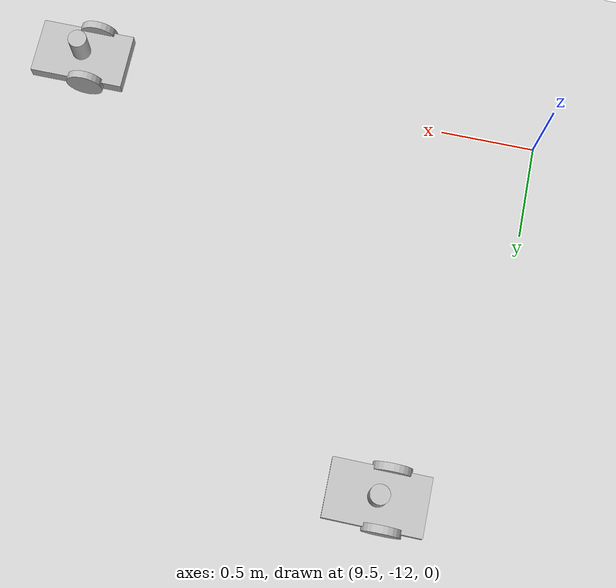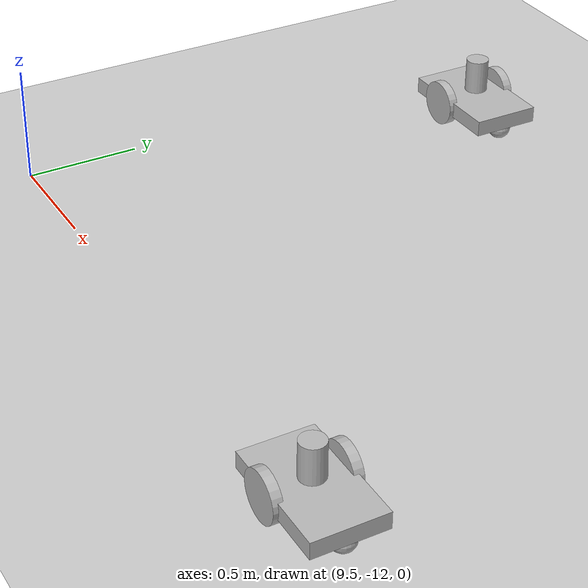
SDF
<sdf version="1.6">
 <world name="default">
  <model name="ground_plane">
   <static>1</static>
   <link name="link">
    <collision name="collision">
     <geometry><plane><normal>0 0 1</normal><size>100 100</size></plane></geometry>
     <surface>
      <contact><collide_bitmask>65535</collide_bitmask></contact>
      <friction><ode><mu>100</mu><mu2>50</mu2></ode></friction>
     </surface>
    </collision>
    <visual name="visual">
     <cast_shadows>0</cast_shadows>
     <geometry><plane><normal>0 0 1</normal><size>100 100</size></plane></geometry>
     <material>
      <script><uri>file://media/materials/scripts/gazebo.material</uri><name>Gazebo/Grey</name></script>
     </material>
    </visual>
   </link>
  </model>
  <model name="robot_8">
   <link name="robot/link_chassis">
    <inertial>
     <pose>0 0 0.021667 0 -0 0</pose>
     <mass>6</mass>
     <inertia>
      <ixx>0.0931667</ixx>
      <ixy>0</ixy>
      <ixz>0</ixz>
      <iyy>0.2265</iyy>
      <iyz>0</iyz>
      <izz>0.212417</izz>
     </inertia>
    </inertial>
    <collision name="robot/link_chassis_fixed_joint_lump__robot/collision_chassis_collision">
     <geometry><box><size>0.5 0.3 0.07</size></box></geometry>
    </collision>
    <collision name="robot/link_chassis_fixed_joint_lump__robot/caster_front_collision_collision_1">
     <pose>0.35 0 -0.05 0 -0 0</pose>
     <geometry><sphere><radius>0.05</radius></sphere></geometry>
    </collision>
    <collision name="robot/link_chassis_fixed_joint_lump__robot/sensor_laser_collision_2">
     <pose>0 0 0.13 0 -0 0</pose>
     <geometry><cylinder><length>0.15</length><radius>0.05</radius></cylinder></geometry>
    </collision>
    <visual name="robot/link_chassis_visual"><geometry><box><size>0.5 0.3 0.07</size></box></geometry></visual>
    <visual name="robot/link_chassis_fixed_joint_lump__robot/caster_front_visual_visual_1">
     <pose>0.2 0 -0.05 0 -0 0</pose>
     <geometry><sphere><radius>0.05</radius></sphere></geometry>
    </visual>
    <visual name="robot/link_chassis_fixed_joint_lump__robot/sensor_laser_visual_2">
     <pose>0 0 0.13 0 -0 0</pose>
     <geometry><cylinder><length>0.15</length><radius>0.05</radius></cylinder></geometry>
     <material><script><uri>__default__</uri><name>__default__</name></script></material>
    </visual>
    <sensor name="head_hokuyo_sensor" type="ray">
     <visualize>0</visualize>
     <update_rate>20</update_rate>
     <ray>
      <scan>
       <horizontal>
        <samples>720</samples>
        <resolution>1</resolution>
        <min_angle>-1.5707</min_angle>
        <max_angle>1.5707</max_angle>
       </horizontal>
       <vertical><samples>1</samples><min_angle>0</min_angle><max_angle>0</max_angle></vertical>
      </scan>
      <range><min>0.2</min><max>2</max><resolution>0.01</resolution></range>
      <noise><type>gaussian</type><mean>0</mean><stddev>0.01</stddev></noise>
     </ray>
     <plugin name="gazebo_ros_head_hokuyo_controller" filename="libgazebo_ros_laser.so">
      <topicName>laser_scan</topicName>
      <frameName>sensor_laser</frameName>
      <robotNamespace>/robot_8/</robotNamespace>
     </plugin>
     <pose>0 0 0.13 0 -0 0</pose>
    </sensor>
   </link>
   <link name="robot/link_left_wheel">
    <pose>-0.05 -0.15 0 0 -0 0</pose>
    <inertial>
     <pose>0 0 0 -0 1.5707 1.5707</pose>
     <mass>0.2</mass>
     <inertia>
      <ixx>0.000526667</ixx>
      <ixy>0</ixy>
      <ixz>0</ixz>
      <iyy>0.000526667</iyy>
      <iyz>0</iyz>
      <izz>0.001</izz>
     </inertia>
    </inertial>
    <collision name="robot/link_left_wheel_collision_collision">
     <pose>0 0 0 3.14159 1.57079 -1.57089</pose>
     <geometry><cylinder><length>0.04</length><radius>0.1</radius></cylinder></geometry>
    </collision>
    <visual name="robot/link_left_wheel_visual_visual">
     <pose>0 0 0 3.14159 1.57079 -1.57089</pose>
     <geometry><cylinder><length>0.04</length><radius>0.1</radius></cylinder></geometry>
    </visual>
   </link>
   <joint name="robot/joint_left_wheel" type="revolute">
    <child>robot/link_left_wheel</child>
    <parent>robot/link_chassis</parent>
    <axis>
     <xyz>0 1 0</xyz>
     <limit><lower>-1e+16</lower><upper>1e+16</upper></limit>
     <dynamics><spring_reference>0</spring_reference><spring_stiffness>0</spring_stiffness></dynamics>
     <use_parent_model_frame>1</use_parent_model_frame>
    </axis>
   </joint>
   <link name="robot/link_right_wheel">
    <pose>-0.05 0.15 0 0 -0 0</pose>
    <inertial>
     <pose>0 0 0 -0 1.5707 1.5707</pose>
     <mass>0.2</mass>
     <inertia>
      <ixx>0.000526667</ixx>
      <ixy>0</ixy>
      <ixz>0</ixz>
      <iyy>0.000526667</iyy>
      <iyz>0</iyz>
      <izz>0.001</izz>
     </inertia>
    </inertial>
    <collision name="robot/link_right_wheel_collision_collision">
     <pose>0 0 0 3.14159 1.57079 -1.57089</pose>
     <geometry><cylinder><length>0.04</length><radius>0.1</radius></cylinder></geometry>
    </collision>
    <visual name="robot/link_right_wheel_visual_visual">
     <pose>0 0 0 3.14159 1.57079 -1.57089</pose>
     <geometry><cylinder><length>0.04</length><radius>0.1</radius></cylinder></geometry>
    </visual>
   </link>
   <joint name="robot/joint_right_wheel" type="revolute">
    <child>robot/link_right_wheel</child>
    <parent>robot/link_chassis</parent>
    <axis>
     <xyz>0 1 0</xyz>
     <limit><lower>-1e+16</lower><upper>1e+16</upper></limit>
     <dynamics><spring_reference>0</spring_reference><spring_stiffness>0</spring_stiffness></dynamics>
     <use_parent_model_frame>1</use_parent_model_frame>
    </axis>
   </joint>
   <plugin name="gazebo_ros_control" filename="libgazebo_ros_control.so">
    <robotSimType>gazebo_ros_control/DefaultRobotHWSim</robotSimType>
    <legacyModeNS>1</legacyModeNS>
    <robotNamespace>/robot_8/</robotNamespace>
   </plugin>
   <static>0</static>
   <plugin name="differential_drive_controller" filename="libgazebo_ros_diff_drive.so">
    <legacyMode>0</legacyMode>
    <alwaysOn>1</alwaysOn>
    <updateRate>20</updateRate>
    <leftJoint>robot/joint_left_wheel</leftJoint>
    <rightJoint>robot/joint_right_wheel</rightJoint>
    <wheelSeparation>0.2</wheelSeparation>
    <wheelDiameter>0.2</wheelDiameter>
    <torque>0.1</torque>
    <commandTopic>cmd_vel</commandTopic>
    <odometryTopic>odom</odometryTopic>
    <odometryFrame>odom</odometryFrame>
    <robotBaseFrame>link_chassis</robotBaseFrame>
    <robotNamespace>/robot_8/</robotNamespace>
   </plugin>
   <pose>11.9947 -11.9977 0.1 0 1e-06 -0.002934</pose>
  </model>
  <model name="robot_7">
   <link name="robot/link_chassis">
    <inertial>
     <pose>0 0 0.021667 0 -0 0</pose>
     <mass>6</mass>
     <inertia>
      <ixx>0.0931667</ixx>
      <ixy>0</ixy>
      <ixz>0</ixz>
      <iyy>0.2265</iyy>
      <iyz>0</iyz>
      <izz>0.212417</izz>
     </inertia>
    </inertial>
    <collision name="robot/link_chassis_fixed_joint_lump__robot/collision_chassis_collision">
     <geometry><box><size>0.5 0.3 0.07</size></box></geometry>
    </collision>
    <collision name="robot/link_chassis_fixed_joint_lump__robot/caster_front_collision_collision_1">
     <pose>0.35 0 -0.05 0 -0 0</pose>
     <geometry><sphere><radius>0.05</radius></sphere></geometry>
    </collision>
    <collision name="robot/link_chassis_fixed_joint_lump__robot/sensor_laser_collision_2">
     <pose>0 0 0.13 0 -0 0</pose>
     <geometry><cylinder><length>0.15</length><radius>0.05</radius></cylinder></geometry>
    </collision>
    <visual name="robot/link_chassis_visual"><geometry><box><size>0.5 0.3 0.07</size></box></geometry></visual>
    <visual name="robot/link_chassis_fixed_joint_lump__robot/caster_front_visual_visual_1">
     <pose>0.2 0 -0.05 0 -0 0</pose>
     <geometry><sphere><radius>0.05</radius></sphere></geometry>
    </visual>
    <visual name="robot/link_chassis_fixed_joint_lump__robot/sensor_laser_visual_2">
     <pose>0 0 0.13 0 -0 0</pose>
     <geometry><cylinder><length>0.15</length><radius>0.05</radius></cylinder></geometry>
     <material><script><uri>__default__</uri><name>__default__</name></script></material>
    </visual>
    <sensor name="head_hokuyo_sensor" type="ray">
     <visualize>0</visualize>
     <update_rate>20</update_rate>
     <ray>
      <scan>
       <horizontal>
        <samples>720</samples>
        <resolution>1</resolution>
        <min_angle>-1.5707</min_angle>
        <max_angle>1.5707</max_angle>
       </horizontal>
       <vertical><samples>1</samples><min_angle>0</min_angle><max_angle>0</max_angle></vertical>
      </scan>
      <range><min>0.2</min><max>2</max><resolution>0.01</resolution></range>
      <noise><type>gaussian</type><mean>0</mean><stddev>0.01</stddev></noise>
     </ray>
     <plugin name="gazebo_ros_head_hokuyo_controller" filename="libgazebo_ros_laser.so">
      <topicName>laser_scan</topicName>
      <frameName>sensor_laser</frameName>
      <robotNamespace>/robot_7/</robotNamespace>
     </plugin>
     <pose>0 0 0.13 0 -0 0</pose>
    </sensor>
   </link>
   <link name="robot/link_left_wheel">
    <pose>-0.05 -0.15 0 0 -0 0</pose>
    <inertial>
     <pose>0 0 0 -0 1.5707 1.5707</pose>
     <mass>0.2</mass>
     <inertia>
      <ixx>0.000526667</ixx>
      <ixy>0</ixy>
      <ixz>0</ixz>
      <iyy>0.000526667</iyy>
      <iyz>0</iyz>
      <izz>0.001</izz>
     </inertia>
    </inertial>
    <collision name="robot/link_left_wheel_collision_collision">
     <pose>0 0 0 3.14159 1.57079 -1.57089</pose>
     <geometry><cylinder><length>0.04</length><radius>0.1</radius></cylinder></geometry>
    </collision>
    <visual name="robot/link_left_wheel_visual_visual">
     <pose>0 0 0 3.14159 1.57079 -1.57089</pose>
     <geometry><cylinder><length>0.04</length><radius>0.1</radius></cylinder></geometry>
    </visual>
   </link>
   <joint name="robot/joint_left_wheel" type="revolute">
    <child>robot/link_left_wheel</child>
    <parent>robot/link_chassis</parent>
    <axis>
     <xyz>0 1 0</xyz>
     <limit><lower>-1e+16</lower><upper>1e+16</upper></limit>
     <dynamics><spring_reference>0</spring_reference><spring_stiffness>0</spring_stiffness></dynamics>
     <use_parent_model_frame>1</use_parent_model_frame>
    </axis>
   </joint>
   <link name="robot/link_right_wheel">
    <pose>-0.05 0.15 0 0 -0 0</pose>
    <inertial>
     <pose>0 0 0 -0 1.5707 1.5707</pose>
     <mass>0.2</mass>
     <inertia>
      <ixx>0.000526667</ixx>
      <ixy>0</ixy>
      <ixz>0</ixz>
      <iyy>0.000526667</iyy>
      <iyz>0</iyz>
      <izz>0.001</izz>
     </inertia>
    </inertial>
    <collision name="robot/link_right_wheel_collision_collision">
     <pose>0 0 0 3.14159 1.57079 -1.57089</pose>
     <geometry><cylinder><length>0.04</length><radius>0.1</radius></cylinder></geometry>
    </collision>
    <visual name="robot/link_right_wheel_visual_visual">
     <pose>0 0 0 3.14159 1.57079 -1.57089</pose>
     <geometry><cylinder><length>0.04</length><radius>0.1</radius></cylinder></geometry>
    </visual>
   </link>
   <joint name="robot/joint_right_wheel" type="revolute">
    <child>robot/link_right_wheel</child>
    <parent>robot/link_chassis</parent>
    <axis>
     <xyz>0 1 0</xyz>
     <limit><lower>-1e+16</lower><upper>1e+16</upper></limit>
     <dynamics><spring_reference>0</spring_reference><spring_stiffness>0</spring_stiffness></dynamics>
     <use_parent_model_frame>1</use_parent_model_frame>
    </axis>
   </joint>
   <plugin name="gazebo_ros_control" filename="libgazebo_ros_control.so">
    <robotSimType>gazebo_ros_control/DefaultRobotHWSim</robotSimType>
    <legacyModeNS>1</legacyModeNS>
    <robotNamespace>/robot_7/</robotNamespace>
   </plugin>
   <static>0</static>
   <plugin name="differential_drive_controller" filename="libgazebo_ros_diff_drive.so">
    <legacyMode>0</legacyMode>
    <alwaysOn>1</alwaysOn>
    <updateRate>20</updateRate>
    <leftJoint>robot/joint_left_wheel</leftJoint>
    <rightJoint>robot/joint_right_wheel</rightJoint>
    <wheelSeparation>0.2</wheelSeparation>
    <wheelDiameter>0.2</wheelDiameter>
    <torque>0.1</torque>
    <commandTopic>cmd_vel</commandTopic>
    <odometryTopic>odom</odometryTopic>
    <odometryFrame>odom</odometryFrame>
    <robotBaseFrame>link_chassis</robotBaseFrame>
    <robotNamespace>/robot_7/</robotNamespace>
   </plugin>
   <pose>9.99478 -9.99772 0.1 -0 1e-06 -0.002935</pose>
  </model>
 </world>
</sdf>
